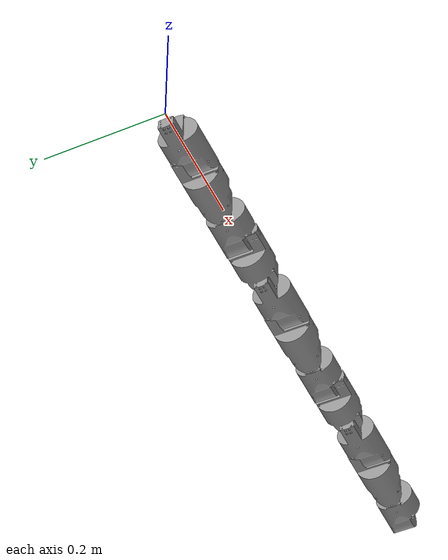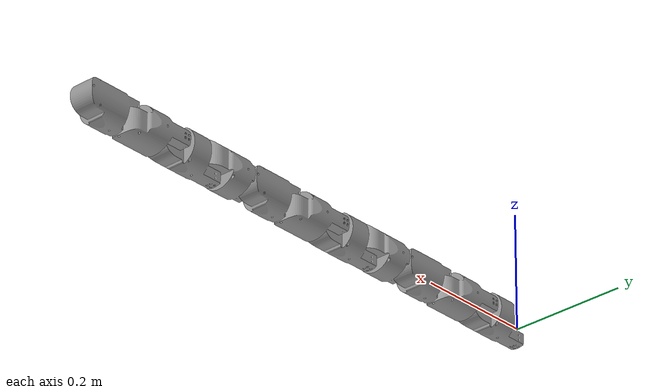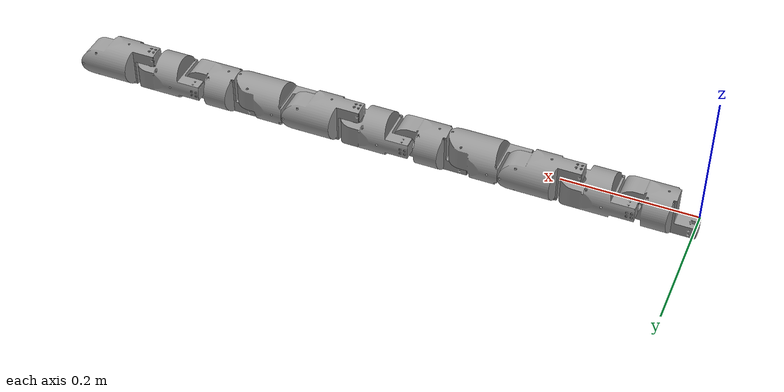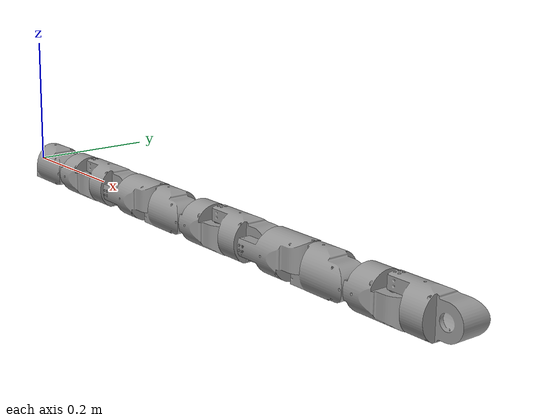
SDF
<?xml version='1.0'?>
<sdf version='1.6'>
  <model name='11segment'>
    <link name='segment_00'>
      <pose frame=''>0 0 0 0 -0 0</pose>
      <inertial>
        <mass>0.4</mass>
        <inertia>
          <ixx>0.00018565</ixx>
          <ixy>0.00003467</ixy>
          <ixz>-0.0002976</ixz>
          <iyy>0.00034114</iyy>
          <iyz>0.00000185</iyz>
          <izz>0.00033012</izz>
        </inertia>
        <pose frame=''>0.063972 -0.002978 -0.001553 0 -0 0</pose>
      </inertial>
      <self_collide>1</self_collide>
      <kinematic>0</kinematic>
      <gravity>1</gravity>
      <visual name='visual'>
        <pose frame=''>0 0 0 0 -0 0</pose>
        <geometry>
          <mesh>
            <uri>model://11segment/meshes/highpoly.stl</uri>
            <scale>1 1 1</scale>
          </mesh>
        </geometry>
        <material>
          <lighting>1</lighting>
          <script>
            <uri>file://media/materials/scripts/gazebo.material</uri>
            <name>Gazebo/Grey</name>
          </script>
          <ambient>0.3 0.3 0.3 1</ambient>
          <diffuse>0.7 0.7 0.7 1</diffuse>
          <specular>0.01 0.01 0.01 1</specular>
          <emissive>0 0 0 1</emissive>
          <shader type='vertex'>
            <normal_map>__default__</normal_map>
          </shader>
        </material>
        <transparency>0</transparency>
        <cast_shadows>1</cast_shadows>
      </visual>
      <collision name='collision'>
        <laser_retro>0</laser_retro>
        <max_contacts>10</max_contacts>
        <pose frame=''>0 0 0 0 -0 0</pose>
        <geometry>
          <mesh>
            <uri>model://11segment/meshes/lowpoly.stl</uri>
            <scale>1 1 1</scale>
          </mesh>
        </geometry>
        <surface>
          <friction>
            <ode>
              <mu>1</mu>
              <mu2>1</mu2>
              <fdir1>0 0 0</fdir1>
              <slip1>0</slip1>
              <slip2>0</slip2>
            </ode>
            <torsional>
              <coefficient>1</coefficient>
              <patch_radius>0</patch_radius>
              <surface_radius>0</surface_radius>
              <use_patch_radius>1</use_patch_radius>
              <ode>
                <slip>0</slip>
              </ode>
            </torsional>
          </friction>
          <bounce>
            <restitution_coefficient>0</restitution_coefficient>
            <threshold>1e+06</threshold>
          </bounce>
          <contact>
            <collide_without_contact>0</collide_without_contact>
            <collide_without_contact_bitmask>1</collide_without_contact_bitmask>
            <collide_bitmask>491521</collide_bitmask>
            <ode>
              <soft_cfm>0</soft_cfm>
              <soft_erp>0.2</soft_erp>
              <kp>1e+13</kp>
              <kd>1</kd>
              <max_vel>0.01</max_vel>
              <min_depth>0</min_depth>
            </ode>
            <bullet>
              <split_impulse>1</split_impulse>
              <split_impulse_penetration_threshold>-0.01</split_impulse_penetration_threshold>
              <soft_cfm>0</soft_cfm>
              <soft_erp>0.2</soft_erp>
              <kp>1e+13</kp>
              <kd>1</kd>
            </bullet>
          </contact>
        </surface>
      </collision>
    </link>
    <link name='segment_01'>
      <pose frame=''>0.084 0 0 1.5708 -0 0</pose>
      <inertial>
        <mass>0.4</mass>
        <inertia>
          <ixx>0.00018565</ixx>
          <ixy>0.00003467</ixy>
          <ixz>-0.0002976</ixz>
          <iyy>0.00034114</iyy>
          <iyz>0.00000185</iyz>
          <izz>0.00033012</izz>
        </inertia>
        <pose frame=''>0.063972 -0.002978 -0.001553 0 -0 0</pose>
      </inertial>
      <self_collide>1</self_collide>
      <kinematic>0</kinematic>
      <gravity>1</gravity>
      <visual name='visual'>
        <pose frame=''>0 0 0 0 -0 0</pose>
        <geometry>
          <mesh>
            <uri>model://11segment/meshes/highpoly.stl</uri>
            <scale>1 1 1</scale>
          </mesh>
        </geometry>
        <material>
          <lighting>1</lighting>
          <script>
            <uri>file://media/materials/scripts/gazebo.material</uri>
            <name>Gazebo/Grey</name>
          </script>
          <ambient>0.3 0.3 0.3 1</ambient>
          <diffuse>0.7 0.7 0.7 1</diffuse>
          <specular>0.01 0.01 0.01 1</specular>
          <emissive>0 0 0 1</emissive>
          <shader type='vertex'>
            <normal_map>__default__</normal_map>
          </shader>
        </material>
        <transparency>0</transparency>
        <cast_shadows>1</cast_shadows>
      </visual>
      <collision name='collision'>
        <laser_retro>0</laser_retro>
        <max_contacts>10</max_contacts>
        <pose frame=''>0 0 0 0 -0 0</pose>
        <geometry>
          <mesh>
            <uri>model://11segment/meshes/lowpoly.stl</uri>
            <scale>1 1 1</scale>
          </mesh>
        </geometry>
        <surface>
          <friction>
            <ode>
              <mu>1</mu>
              <mu2>1</mu2>
              <fdir1>0 0 0</fdir1>
              <slip1>0</slip1>
              <slip2>0</slip2>
            </ode>
            <torsional>
              <coefficient>1</coefficient>
              <patch_radius>0</patch_radius>
              <surface_radius>0</surface_radius>
              <use_patch_radius>1</use_patch_radius>
              <ode>
                <slip>0</slip>
              </ode>
            </torsional>
          </friction>
          <bounce>
            <restitution_coefficient>0</restitution_coefficient>
            <threshold>1e+06</threshold>
          </bounce>
          <contact>
            <collide_without_contact>0</collide_without_contact>
            <collide_without_contact_bitmask>1</collide_without_contact_bitmask>
            <collide_bitmask>31744</collide_bitmask>
            <ode>
              <soft_cfm>0</soft_cfm>
              <soft_erp>0.2</soft_erp>
              <kp>1e+13</kp>
              <kd>1</kd>
              <max_vel>0.01</max_vel>
              <min_depth>0</min_depth>
            </ode>
            <bullet>
              <split_impulse>1</split_impulse>
              <split_impulse_penetration_threshold>-0.01</split_impulse_penetration_threshold>
              <soft_cfm>0</soft_cfm>
              <soft_erp>0.2</soft_erp>
              <kp>1e+13</kp>
              <kd>1</kd>
            </bullet>
          </contact>
        </surface>
      </collision>
    </link>
    <link name='segment_02'>
      <pose frame=''>0.168 0 0 3.14159 -0 0</pose>
      <inertial>
        <mass>0.4</mass>
        <inertia>
          <ixx>0.00018565</ixx>
          <ixy>0.00003467</ixy>
          <ixz>-0.0002976</ixz>
          <iyy>0.00034114</iyy>
          <iyz>0.00000185</iyz>
          <izz>0.00033012</izz>
        </inertia>
        <pose frame=''>0.063972 -0.002978 -0.001553 0 -0 0</pose>
      </inertial>
      <self_collide>1</self_collide>
      <kinematic>0</kinematic>
      <gravity>1</gravity>
      <visual name='visual'>
        <pose frame=''>0 0 0 0 -0 0</pose>
        <geometry>
          <mesh>
            <uri>model://11segment/meshes/highpoly.stl</uri>
            <scale>1 1 1</scale>
          </mesh>
        </geometry>
        <material>
          <lighting>1</lighting>
          <script>
            <uri>file://media/materials/scripts/gazebo.material</uri>
            <name>Gazebo/Grey</name>
          </script>
          <ambient>0.3 0.3 0.3 1</ambient>
          <diffuse>0.7 0.7 0.7 1</diffuse>
          <specular>0.01 0.01 0.01 1</specular>
          <emissive>0 0 0 1</emissive>
          <shader type='vertex'>
            <normal_map>__default__</normal_map>
          </shader>
        </material>
        <transparency>0</transparency>
        <cast_shadows>1</cast_shadows>
      </visual>
      <collision name='collision'>
        <laser_retro>0</laser_retro>
        <max_contacts>10</max_contacts>
        <pose frame=''>0 0 0 0 -0 0</pose>
        <geometry>
          <mesh>
            <uri>model://11segment/meshes/lowpoly.stl</uri>
            <scale>1 1 1</scale>
          </mesh>
        </geometry>
        <surface>
          <friction>
            <ode>
              <mu>1</mu>
              <mu2>1</mu2>
              <fdir1>0 0 0</fdir1>
              <slip1>0</slip1>
              <slip2>0</slip2>
            </ode>
            <torsional>
              <coefficient>1</coefficient>
              <patch_radius>0</patch_radius>
              <surface_radius>0</surface_radius>
              <use_patch_radius>1</use_patch_radius>
              <ode>
                <slip>0</slip>
              </ode>
            </torsional>
          </friction>
          <bounce>
            <restitution_coefficient>0</restitution_coefficient>
            <threshold>1e+06</threshold>
          </bounce>
          <contact>
            <collide_without_contact>0</collide_without_contact>
            <collide_without_contact_bitmask>1</collide_without_contact_bitmask>
            <collide_bitmask>960</collide_bitmask>
            <ode>
              <soft_cfm>0</soft_cfm>
              <soft_erp>0.2</soft_erp>
              <kp>1e+13</kp>
              <kd>1</kd>
              <max_vel>0.01</max_vel>
              <min_depth>0</min_depth>
            </ode>
            <bullet>
              <split_impulse>1</split_impulse>
              <split_impulse_penetration_threshold>-0.01</split_impulse_penetration_threshold>
              <soft_cfm>0</soft_cfm>
              <soft_erp>0.2</soft_erp>
              <kp>1e+13</kp>
              <kd>1</kd>
            </bullet>
          </contact>
        </surface>
      </collision>
    </link>
    <link name='segment_03'>
      <pose frame=''>0.252 0 0 -1.57079 0 0</pose>
      <inertial>
        <mass>0.4</mass>
        <inertia>
          <ixx>0.00018565</ixx>
          <ixy>0.00003467</ixy>
          <ixz>-0.0002976</ixz>
          <iyy>0.00034114</iyy>
          <iyz>0.00000185</iyz>
          <izz>0.00033012</izz>
        </inertia>
        <pose frame=''>0.063972 -0.002978 -0.001553 0 -0 0</pose>
      </inertial>
      <self_collide>1</self_collide>
      <kinematic>0</kinematic>
      <gravity>1</gravity>
      <visual name='visual'>
        <pose frame=''>0 0 0 0 -0 0</pose>
        <geometry>
          <mesh>
            <uri>model://11segment/meshes/highpoly.stl</uri>
            <scale>1 1 1</scale>
          </mesh>
        </geometry>
        <material>
          <lighting>1</lighting>
          <script>
            <uri>file://media/materials/scripts/gazebo.material</uri>
            <name>Gazebo/Grey</name>
          </script>
          <ambient>0.3 0.3 0.3 1</ambient>
          <diffuse>0.7 0.7 0.7 1</diffuse>
          <specular>0.01 0.01 0.01 1</specular>
          <emissive>0 0 0 1</emissive>
          <shader type='vertex'>
            <normal_map>__default__</normal_map>
          </shader>
        </material>
        <transparency>0</transparency>
        <cast_shadows>1</cast_shadows>
      </visual>
      <collision name='collision'>
        <laser_retro>0</laser_retro>
        <max_contacts>10</max_contacts>
        <pose frame=''>0 0 0 0 -0 0</pose>
        <geometry>
          <mesh>
            <uri>model://11segment/meshes/lowpoly.stl</uri>
            <scale>1 1 1</scale>
          </mesh>
        </geometry>
        <surface>
          <friction>
            <ode>
              <mu>1</mu>
              <mu2>1</mu2>
              <fdir1>0 0 0</fdir1>
              <slip1>0</slip1>
              <slip2>0</slip2>
            </ode>
            <torsional>
              <coefficient>1</coefficient>
              <patch_radius>0</patch_radius>
              <surface_radius>0</surface_radius>
              <use_patch_radius>1</use_patch_radius>
              <ode>
                <slip>0</slip>
              </ode>
            </torsional>
          </friction>
          <bounce>
            <restitution_coefficient>0</restitution_coefficient>
            <threshold>1e+06</threshold>
          </bounce>
          <contact>
            <collide_without_contact>0</collide_without_contact>
            <collide_without_contact_bitmask>1</collide_without_contact_bitmask>
            <collide_bitmask>56</collide_bitmask>
            <ode>
              <soft_cfm>0</soft_cfm>
              <soft_erp>0.2</soft_erp>
              <kp>1e+13</kp>
              <kd>1</kd>
              <max_vel>0.01</max_vel>
              <min_depth>0</min_depth>
            </ode>
            <bullet>
              <split_impulse>1</split_impulse>
              <split_impulse_penetration_threshold>-0.01</split_impulse_penetration_threshold>
              <soft_cfm>0</soft_cfm>
              <soft_erp>0.2</soft_erp>
              <kp>1e+13</kp>
              <kd>1</kd>
            </bullet>
          </contact>
        </surface>
      </collision>
    </link>
    <link name='segment_04'>
      <pose frame=''>0.336 0 0 0 -0 0</pose>
      <inertial>
        <mass>0.4</mass>
        <inertia>
          <ixx>0.00018565</ixx>
          <ixy>0.00003467</ixy>
          <ixz>-0.0002976</ixz>
          <iyy>0.00034114</iyy>
          <iyz>0.00000185</iyz>
          <izz>0.00033012</izz>
        </inertia>
        <pose frame=''>0.063972 -0.002978 -0.001553 0 -0 0</pose>
      </inertial>
      <self_collide>1</self_collide>
      <kinematic>0</kinematic>
      <gravity>1</gravity>
      <visual name='visual'>
        <pose frame=''>0 0 0 0 -0 0</pose>
        <geometry>
          <mesh>
            <uri>model://11segment/meshes/highpoly.stl</uri>
            <scale>1 1 1</scale>
          </mesh>
        </geometry>
        <material>
          <lighting>1</lighting>
          <script>
            <uri>file://media/materials/scripts/gazebo.material</uri>
            <name>Gazebo/Grey</name>
          </script>
          <ambient>0.3 0.3 0.3 1</ambient>
          <diffuse>0.7 0.7 0.7 1</diffuse>
          <specular>0.01 0.01 0.01 1</specular>
          <emissive>0 0 0 1</emissive>
          <shader type='vertex'>
            <normal_map>__default__</normal_map>
          </shader>
        </material>
        <transparency>0</transparency>
        <cast_shadows>1</cast_shadows>
      </visual>
      <collision name='collision'>
        <laser_retro>0</laser_retro>
        <max_contacts>10</max_contacts>
        <pose frame=''>0 0 0 0 -0 0</pose>
        <geometry>
          <mesh>
            <uri>model://11segment/meshes/lowpoly.stl</uri>
            <scale>1 1 1</scale>
          </mesh>
        </geometry>
        <surface>
          <friction>
            <ode>
              <mu>1</mu>
              <mu2>1</mu2>
              <fdir1>0 0 0</fdir1>
              <slip1>0</slip1>
              <slip2>0</slip2>
            </ode>
            <torsional>
              <coefficient>1</coefficient>
              <patch_radius>0</patch_radius>
              <surface_radius>0</surface_radius>
              <use_patch_radius>1</use_patch_radius>
              <ode>
                <slip>0</slip>
              </ode>
            </torsional>
          </friction>
          <bounce>
            <restitution_coefficient>0</restitution_coefficient>
            <threshold>1e+06</threshold>
          </bounce>
          <contact>
            <collide_without_contact>0</collide_without_contact>
            <collide_without_contact_bitmask>1</collide_without_contact_bitmask>
            <collide_bitmask>6</collide_bitmask>
            <ode>
              <soft_cfm>0</soft_cfm>
              <soft_erp>0.2</soft_erp>
              <kp>1e+13</kp>
              <kd>1</kd>
              <max_vel>0.01</max_vel>
              <min_depth>0</min_depth>
            </ode>
            <bullet>
              <split_impulse>1</split_impulse>
              <split_impulse_penetration_threshold>-0.01</split_impulse_penetration_threshold>
              <soft_cfm>0</soft_cfm>
              <soft_erp>0.2</soft_erp>
              <kp>1e+13</kp>
              <kd>1</kd>
            </bullet>
          </contact>
        </surface>
      </collision>
    </link>
    <link name='segment_05'>
      <pose frame=''>0.42 0 0 1.5708 -0 0</pose>
      <inertial>
        <mass>0.4</mass>
        <inertia>
          <ixx>0.00018565</ixx>
          <ixy>0.00003467</ixy>
          <ixz>-0.0002976</ixz>
          <iyy>0.00034114</iyy>
          <iyz>0.00000185</iyz>
          <izz>0.00033012</izz>
        </inertia>
        <pose frame=''>0.063972 -0.002978 -0.001553 0 -0 0</pose>
      </inertial>
      <self_collide>1</self_collide>
      <kinematic>0</kinematic>
      <gravity>1</gravity>
      <visual name='visual'>
        <pose frame=''>0 0 0 0 -0 0</pose>
        <geometry>
          <mesh>
            <uri>model://11segment/meshes/highpoly.stl</uri>
            <scale>1 1 1</scale>
          </mesh>
        </geometry>
        <material>
          <lighting>1</lighting>
          <script>
            <uri>file://media/materials/scripts/gazebo.material</uri>
            <name>Gazebo/Grey</name>
          </script>
          <ambient>0.3 0.3 0.3 1</ambient>
          <diffuse>0.7 0.7 0.7 1</diffuse>
          <specular>0.01 0.01 0.01 1</specular>
          <emissive>0 0 0 1</emissive>
          <shader type='vertex'>
            <normal_map>__default__</normal_map>
          </shader>
        </material>
        <transparency>0</transparency>
        <cast_shadows>1</cast_shadows>
      </visual>
      <collision name='collision'>
        <laser_retro>0</laser_retro>
        <max_contacts>10</max_contacts>
        <pose frame=''>0 0 0 0 -0 0</pose>
        <geometry>
          <mesh>
            <uri>model://11segment/meshes/lowpoly.stl</uri>
            <scale>1 1 1</scale>
          </mesh>
        </geometry>
        <surface>
          <friction>
            <ode>
              <mu>1</mu>
              <mu2>1</mu2>
              <fdir1>0 0 0</fdir1>
              <slip1>0</slip1>
              <slip2>0</slip2>
            </ode>
            <torsional>
              <coefficient>1</coefficient>
              <patch_radius>0</patch_radius>
              <surface_radius>0</surface_radius>
              <use_patch_radius>1</use_patch_radius>
              <ode>
                <slip>0</slip>
              </ode>
            </torsional>
          </friction>
          <bounce>
            <restitution_coefficient>0</restitution_coefficient>
            <threshold>1e+06</threshold>
          </bounce>
          <contact>
            <collide_without_contact>0</collide_without_contact>
            <collide_without_contact_bitmask>1</collide_without_contact_bitmask>
            <collide_bitmask>1</collide_bitmask>
            <ode>
              <soft_cfm>0</soft_cfm>
              <soft_erp>0.2</soft_erp>
              <kp>1e+13</kp>
              <kd>1</kd>
              <max_vel>0.01</max_vel>
              <min_depth>0</min_depth>
            </ode>
            <bullet>
              <split_impulse>1</split_impulse>
              <split_impulse_penetration_threshold>-0.01</split_impulse_penetration_threshold>
              <soft_cfm>0</soft_cfm>
              <soft_erp>0.2</soft_erp>
              <kp>1e+13</kp>
              <kd>1</kd>
            </bullet>
          </contact>
        </surface>
      </collision>
    </link>
    <link name='segment_06'>
      <pose frame=''>0.504 0 0 3.14159 -0 0</pose>
      <inertial>
        <mass>0.4</mass>
        <inertia>
          <ixx>0.00018565</ixx>
          <ixy>0.00003467</ixy>
          <ixz>-0.0002976</ixz>
          <iyy>0.00034114</iyy>
          <iyz>0.00000185</iyz>
          <izz>0.00033012</izz>
        </inertia>
        <pose frame=''>0.063972 -0.002978 -0.001553 0 -0 0</pose>
      </inertial>
      <self_collide>1</self_collide>
      <kinematic>0</kinematic>
      <gravity>1</gravity>
      <visual name='visual'>
        <pose frame=''>0 0 0 0 -0 0</pose>
        <geometry>
          <mesh>
            <uri>model://11segment/meshes/highpoly.stl</uri>
            <scale>1 1 1</scale>
          </mesh>
        </geometry>
        <material>
          <lighting>1</lighting>
          <script>
            <uri>file://media/materials/scripts/gazebo.material</uri>
            <name>Gazebo/Grey</name>
          </script>
          <ambient>0.3 0.3 0.3 1</ambient>
          <diffuse>0.7 0.7 0.7 1</diffuse>
          <specular>0.01 0.01 0.01 1</specular>
          <emissive>0 0 0 1</emissive>
          <shader type='vertex'>
            <normal_map>__default__</normal_map>
          </shader>
        </material>
        <transparency>0</transparency>
        <cast_shadows>1</cast_shadows>
      </visual>
      <collision name='collision'>
        <laser_retro>0</laser_retro>
        <max_contacts>10</max_contacts>
        <pose frame=''>0 0 0 0 -0 0</pose>
        <geometry>
          <mesh>
            <uri>model://11segment/meshes/lowpoly.stl</uri>
            <scale>1 1 1</scale>
          </mesh>
        </geometry>
        <surface>
          <friction>
            <ode>
              <mu>1</mu>
              <mu2>1</mu2>
              <fdir1>0 0 0</fdir1>
              <slip1>0</slip1>
              <slip2>0</slip2>
            </ode>
            <torsional>
              <coefficient>1</coefficient>
              <patch_radius>0</patch_radius>
              <surface_radius>0</surface_radius>
              <use_patch_radius>1</use_patch_radius>
              <ode>
                <slip>0</slip>
              </ode>
            </torsional>
          </friction>
          <bounce>
            <restitution_coefficient>0</restitution_coefficient>
            <threshold>1e+06</threshold>
          </bounce>
          <contact>
            <collide_without_contact>0</collide_without_contact>
            <collide_without_contact_bitmask>1</collide_without_contact_bitmask>
            <collide_bitmask>278528</collide_bitmask>
            <ode>
              <soft_cfm>0</soft_cfm>
              <soft_erp>0.2</soft_erp>
              <kp>1e+13</kp>
              <kd>1</kd>
              <max_vel>0.01</max_vel>
              <min_depth>0</min_depth>
            </ode>
            <bullet>
              <split_impulse>1</split_impulse>
              <split_impulse_penetration_threshold>-0.01</split_impulse_penetration_threshold>
              <soft_cfm>0</soft_cfm>
              <soft_erp>0.2</soft_erp>
              <kp>1e+13</kp>
              <kd>1</kd>
            </bullet>
          </contact>
        </surface>
      </collision>
    </link>
    <link name='segment_07'>
      <pose frame=''>0.588 0 0 -1.57079 0 0</pose>
      <inertial>
        <mass>0.4</mass>
        <inertia>
          <ixx>0.00018565</ixx>
          <ixy>0.00003467</ixy>
          <ixz>-0.0002976</ixz>
          <iyy>0.00034114</iyy>
          <iyz>0.00000185</iyz>
          <izz>0.00033012</izz>
        </inertia>
        <pose frame=''>0.063972 -0.002978 -0.001553 0 -0 0</pose>
      </inertial>
      <self_collide>1</self_collide>
      <kinematic>0</kinematic>
      <gravity>1</gravity>
      <visual name='visual'>
        <pose frame=''>0 0 0 0 -0 0</pose>
        <geometry>
          <mesh>
            <uri>model://11segment/meshes/highpoly.stl</uri>
            <scale>1 1 1</scale>
          </mesh>
        </geometry>
        <material>
          <lighting>1</lighting>
          <script>
            <uri>file://media/materials/scripts/gazebo.material</uri>
            <name>Gazebo/Grey</name>
          </script>
          <ambient>0.3 0.3 0.3 1</ambient>
          <diffuse>0.7 0.7 0.7 1</diffuse>
          <specular>0.01 0.01 0.01 1</specular>
          <emissive>0 0 0 1</emissive>
          <shader type='vertex'>
            <normal_map>__default__</normal_map>
          </shader>
        </material>
        <transparency>0</transparency>
        <cast_shadows>1</cast_shadows>
      </visual>
      <collision name='collision'>
        <laser_retro>0</laser_retro>
        <max_contacts>10</max_contacts>
        <pose frame=''>0 0 0 0 -0 0</pose>
        <geometry>
          <mesh>
            <uri>model://11segment/meshes/lowpoly.stl</uri>
            <scale>1 1 1</scale>
          </mesh>
        </geometry>
        <surface>
          <friction>
            <ode>
              <mu>1</mu>
              <mu2>1</mu2>
              <fdir1>0 0 0</fdir1>
              <slip1>0</slip1>
              <slip2>0</slip2>
            </ode>
            <torsional>
              <coefficient>1</coefficient>
              <patch_radius>0</patch_radius>
              <surface_radius>0</surface_radius>
              <use_patch_radius>1</use_patch_radius>
              <ode>
                <slip>0</slip>
              </ode>
            </torsional>
          </friction>
          <bounce>
            <restitution_coefficient>0</restitution_coefficient>
            <threshold>1e+06</threshold>
          </bounce>
          <contact>
            <collide_without_contact>0</collide_without_contact>
            <collide_without_contact_bitmask>1</collide_without_contact_bitmask>
            <collide_bitmask>139776</collide_bitmask>
            <ode>
              <soft_cfm>0</soft_cfm>
              <soft_erp>0.2</soft_erp>
              <kp>1e+13</kp>
              <kd>1</kd>
              <max_vel>0.01</max_vel>
              <min_depth>0</min_depth>
            </ode>
            <bullet>
              <split_impulse>1</split_impulse>
              <split_impulse_penetration_threshold>-0.01</split_impulse_penetration_threshold>
              <soft_cfm>0</soft_cfm>
              <soft_erp>0.2</soft_erp>
              <kp>1e+13</kp>
              <kd>1</kd>
            </bullet>
          </contact>
        </surface>
      </collision>
    </link>
    <link name='segment_08'>
      <pose frame=''>0.672 0 0 0 -0 0</pose>
      <inertial>
        <mass>0.4</mass>
        <inertia>
          <ixx>0.00018565</ixx>
          <ixy>0.00003467</ixy>
          <ixz>-0.0002976</ixz>
          <iyy>0.00034114</iyy>
          <iyz>0.00000185</iyz>
          <izz>0.00033012</izz>
        </inertia>
        <pose frame=''>0.063972 -0.002978 -0.001553 0 -0 0</pose>
      </inertial>
      <self_collide>1</self_collide>
      <kinematic>0</kinematic>
      <gravity>1</gravity>
      <visual name='visual'>
        <pose frame=''>0 0 0 0 -0 0</pose>
        <geometry>
          <mesh>
            <uri>model://11segment/meshes/highpoly.stl</uri>
            <scale>1 1 1</scale>
          </mesh>
        </geometry>
        <material>
          <lighting>1</lighting>
          <script>
            <uri>file://media/materials/scripts/gazebo.material</uri>
            <name>Gazebo/Grey</name>
          </script>
          <ambient>0.3 0.3 0.3 1</ambient>
          <diffuse>0.7 0.7 0.7 1</diffuse>
          <specular>0.01 0.01 0.01 1</specular>
          <emissive>0 0 0 1</emissive>
          <shader type='vertex'>
            <normal_map>__default__</normal_map>
          </shader>
        </material>
        <transparency>0</transparency>
        <cast_shadows>1</cast_shadows>
      </visual>
      <collision name='collision'>
        <laser_retro>0</laser_retro>
        <max_contacts>10</max_contacts>
        <pose frame=''>0 0 0 0 -0 0</pose>
        <geometry>
          <mesh>
            <uri>model://11segment/meshes/lowpoly.stl</uri>
            <scale>1 1 1</scale>
          </mesh>
        </geometry>
        <surface>
          <friction>
            <ode>
              <mu>1</mu>
              <mu2>1</mu2>
              <fdir1>0 0 0</fdir1>
              <slip1>0</slip1>
              <slip2>0</slip2>
            </ode>
            <torsional>
              <coefficient>1</coefficient>
              <patch_radius>0</patch_radius>
              <surface_radius>0</surface_radius>
              <use_patch_radius>1</use_patch_radius>
              <ode>
                <slip>0</slip>
              </ode>
            </torsional>
          </friction>
          <bounce>
            <restitution_coefficient>0</restitution_coefficient>
            <threshold>1e+06</threshold>
          </bounce>
          <contact>
            <collide_without_contact>0</collide_without_contact>
            <collide_without_contact_bitmask>1</collide_without_contact_bitmask>
            <collide_bitmask>69920</collide_bitmask>
            <ode>
              <soft_cfm>0</soft_cfm>
              <soft_erp>0.2</soft_erp>
              <kp>1e+13</kp>
              <kd>1</kd>
              <max_vel>0.01</max_vel>
              <min_depth>0</min_depth>
            </ode>
            <bullet>
              <split_impulse>1</split_impulse>
              <split_impulse_penetration_threshold>-0.01</split_impulse_penetration_threshold>
              <soft_cfm>0</soft_cfm>
              <soft_erp>0.2</soft_erp>
              <kp>1e+13</kp>
              <kd>1</kd>
            </bullet>
          </contact>
        </surface>
      </collision>
    </link>
    <link name='segment_09'>
      <pose frame=''>0.756 0 0 1.5708 -0 0</pose>
      <inertial>
        <mass>0.4</mass>
        <inertia>
          <ixx>0.00018565</ixx>
          <ixy>0.00003467</ixy>
          <ixz>-0.0002976</ixz>
          <iyy>0.00034114</iyy>
          <iyz>0.00000185</iyz>
          <izz>0.00033012</izz>
        </inertia>
        <pose frame=''>0.063972 -0.002978 -0.001553 0 -0 0</pose>
      </inertial>
      <self_collide>1</self_collide>
      <kinematic>0</kinematic>
      <gravity>1</gravity>
      <visual name='visual'>
        <pose frame=''>0 0 0 0 -0 0</pose>
        <geometry>
          <mesh>
            <uri>model://11segment/meshes/highpoly.stl</uri>
            <scale>1 1 1</scale>
          </mesh>
        </geometry>
        <material>
          <lighting>1</lighting>
          <script>
            <uri>file://media/materials/scripts/gazebo.material</uri>
            <name>Gazebo/Grey</name>
          </script>
          <ambient>0.3 0.3 0.3 1</ambient>
          <diffuse>0.7 0.7 0.7 1</diffuse>
          <specular>0.01 0.01 0.01 1</specular>
          <emissive>0 0 0 1</emissive>
          <shader type='vertex'>
            <normal_map>__default__</normal_map>
          </shader>
        </material>
        <transparency>0</transparency>
        <cast_shadows>1</cast_shadows>
      </visual>
      <collision name='collision'>
        <laser_retro>0</laser_retro>
        <max_contacts>10</max_contacts>
        <pose frame=''>0 0 0 0 -0 0</pose>
        <geometry>
          <mesh>
            <uri>model://11segment/meshes/lowpoly.stl</uri>
            <scale>1 1 1</scale>
          </mesh>
        </geometry>
        <surface>
          <friction>
            <ode>
              <mu>1</mu>
              <mu2>1</mu2>
              <fdir1>0 0 0</fdir1>
              <slip1>0</slip1>
              <slip2>0</slip2>
            </ode>
            <torsional>
              <coefficient>1</coefficient>
              <patch_radius>0</patch_radius>
              <surface_radius>0</surface_radius>
              <use_patch_radius>1</use_patch_radius>
              <ode>
                <slip>0</slip>
              </ode>
            </torsional>
          </friction>
          <bounce>
            <restitution_coefficient>0</restitution_coefficient>
            <threshold>1e+06</threshold>
          </bounce>
          <contact>
            <collide_without_contact>0</collide_without_contact>
            <collide_without_contact_bitmask>1</collide_without_contact_bitmask>
            <collide_bitmask>34964</collide_bitmask>
            <ode>
              <soft_cfm>0</soft_cfm>
              <soft_erp>0.2</soft_erp>
              <kp>1e+13</kp>
              <kd>1</kd>
              <max_vel>0.01</max_vel>
              <min_depth>0</min_depth>
            </ode>
            <bullet>
              <split_impulse>1</split_impulse>
              <split_impulse_penetration_threshold>-0.01</split_impulse_penetration_threshold>
              <soft_cfm>0</soft_cfm>
              <soft_erp>0.2</soft_erp>
              <kp>1e+13</kp>
              <kd>1</kd>
            </bullet>
          </contact>
        </surface>
      </collision>
    </link>
    <link name='segment_10'>
      <pose frame=''>0.84 0 0 3.14159 -0 0</pose>
      <inertial>
        <mass>0.4</mass>
        <inertia>
          <ixx>0.00018565</ixx>
          <ixy>0.00003467</ixy>
          <ixz>-0.0002976</ixz>
          <iyy>0.00034114</iyy>
          <iyz>0.00000185</iyz>
          <izz>0.00033012</izz>
        </inertia>
        <pose frame=''>0.063972 -0.002978 -0.001553 0 -0 0</pose>
      </inertial>
      <self_collide>1</self_collide>
      <kinematic>0</kinematic>
      <gravity>1</gravity>
      <visual name='visual'>
        <pose frame=''>0 0 0 0 -0 0</pose>
        <geometry>
          <mesh>
            <uri>model://11segment/meshes/highpoly.stl</uri>
            <scale>1 1 1</scale>
          </mesh>
        </geometry>
        <material>
          <lighting>1</lighting>
          <script>
            <uri>file://media/materials/scripts/gazebo.material</uri>
            <name>Gazebo/Grey</name>
          </script>
          <ambient>0.3 0.3 0.3 1</ambient>
          <diffuse>0.7 0.7 0.7 1</diffuse>
          <specular>0.01 0.01 0.01 1</specular>
          <emissive>0 0 0 1</emissive>
          <shader type='vertex'>
            <normal_map>__default__</normal_map>
          </shader>
        </material>
        <transparency>0</transparency>
        <cast_shadows>1</cast_shadows>
      </visual>
      <collision name='collision'>
        <laser_retro>0</laser_retro>
        <max_contacts>10</max_contacts>
        <pose frame=''>0 0 0 0 -0 0</pose>
        <geometry>
          <mesh>
            <uri>model://11segment/meshes/lowpoly.stl</uri>
            <scale>1 1 1</scale>
          </mesh>
        </geometry>
        <surface>
          <friction>
            <ode>
              <mu>1</mu>
              <mu2>1</mu2>
              <fdir1>0 0 0</fdir1>
              <slip1>0</slip1>
              <slip2>0</slip2>
            </ode>
            <torsional>
              <coefficient>1</coefficient>
              <patch_radius>0</patch_radius>
              <surface_radius>0</surface_radius>
              <use_patch_radius>1</use_patch_radius>
              <ode>
                <slip>0</slip>
              </ode>
            </torsional>
          </friction>
          <bounce>
            <restitution_coefficient>0</restitution_coefficient>
            <threshold>1e+06</threshold>
          </bounce>
          <contact>
            <collide_without_contact>0</collide_without_contact>
            <collide_without_contact_bitmask>1</collide_without_contact_bitmask>
            <collide_bitmask>1099</collide_bitmask>
            <ode>
              <soft_cfm>0</soft_cfm>
              <soft_erp>0.2</soft_erp>
              <kp>1e+13</kp>
              <kd>1</kd>
              <max_vel>0.01</max_vel>
              <min_depth>0</min_depth>
            </ode>
            <bullet>
              <split_impulse>1</split_impulse>
              <split_impulse_penetration_threshold>-0.01</split_impulse_penetration_threshold>
              <soft_cfm>0</soft_cfm>
              <soft_erp>0.2</soft_erp>
              <kp>1e+13</kp>
              <kd>1</kd>
            </bullet>
          </contact>
        </surface>
      </collision>
    </link>
    <joint name='joint_0' type='revolute'>
      <parent>segment_00</parent>
      <child>segment_01</child>
      <pose frame=''>0.007 0 0 0 -0 0</pose>
      <axis>
        <xyz>0 0 -1</xyz>
        <use_parent_model_frame>0</use_parent_model_frame>
        <limit>
          <lower>-1.5708</lower>
          <upper>1.5708</upper>
          <effort>-1</effort>
          <velocity>-1</velocity>
        </limit>
        <dynamics>
          <spring_reference>0</spring_reference>
          <spring_stiffness>0</spring_stiffness>
          <damping>0</damping>
          <friction>0</friction>
        </dynamics>
      </axis>
      <physics>
        <ode>
          <limit>
            <cfm>0</cfm>
            <erp>0.2</erp>
          </limit>
          <suspension>
            <cfm>0</cfm>
            <erp>0.2</erp>
          </suspension>
        </ode>
      </physics>
    </joint>
    <joint name='joint_1' type='revolute'>
      <parent>segment_01</parent>
      <child>segment_02</child>
      <pose frame=''>0.007 0 0 0 -0 0</pose>
      <axis>
        <xyz>0 0 -1</xyz>
        <use_parent_model_frame>0</use_parent_model_frame>
        <limit>
          <lower>-1.5708</lower>
          <upper>1.5708</upper>
          <effort>-1</effort>
          <velocity>-1</velocity>
        </limit>
        <dynamics>
          <spring_reference>0</spring_reference>
          <spring_stiffness>0</spring_stiffness>
          <damping>0</damping>
          <friction>0</friction>
        </dynamics>
      </axis>
      <physics>
        <ode>
          <limit>
            <cfm>0</cfm>
            <erp>0.2</erp>
          </limit>
          <suspension>
            <cfm>0</cfm>
            <erp>0.2</erp>
          </suspension>
        </ode>
      </physics>
    </joint>
    <joint name='joint_2' type='revolute'>
      <parent>segment_02</parent>
      <child>segment_03</child>
      <pose frame=''>0.007 0 0 0 -0 0</pose>
      <axis>
        <xyz>0 0 -1</xyz>
        <use_parent_model_frame>0</use_parent_model_frame>
        <limit>
          <lower>-1.5708</lower>
          <upper>1.5708</upper>
          <effort>-1</effort>
          <velocity>-1</velocity>
        </limit>
        <dynamics>
          <spring_reference>0</spring_reference>
          <spring_stiffness>0</spring_stiffness>
          <damping>0</damping>
          <friction>0</friction>
        </dynamics>
      </axis>
      <physics>
        <ode>
          <limit>
            <cfm>0</cfm>
            <erp>0.2</erp>
          </limit>
          <suspension>
            <cfm>0</cfm>
            <erp>0.2</erp>
          </suspension>
        </ode>
      </physics>
    </joint>
    <joint name='joint_3' type='revolute'>
      <parent>segment_03</parent>
      <child>segment_04</child>
      <pose frame=''>0.007 0 0 0 -0 0</pose>
      <axis>
        <xyz>0 0 -1</xyz>
        <use_parent_model_frame>0</use_parent_model_frame>
        <limit>
          <lower>-1.5708</lower>
          <upper>1.5708</upper>
          <effort>-1</effort>
          <velocity>-1</velocity>
        </limit>
        <dynamics>
          <spring_reference>0</spring_reference>
          <spring_stiffness>0</spring_stiffness>
          <damping>0</damping>
          <friction>0</friction>
        </dynamics>
      </axis>
      <physics>
        <ode>
          <limit>
            <cfm>0</cfm>
            <erp>0.2</erp>
          </limit>
          <suspension>
            <cfm>0</cfm>
            <erp>0.2</erp>
          </suspension>
        </ode>
      </physics>
    </joint>
    <joint name='joint_4' type='revolute'>
      <parent>segment_04</parent>
      <child>segment_05</child>
      <pose frame=''>0.007 0 0 0 -0 0</pose>
      <axis>
        <xyz>0 0 -1</xyz>
        <use_parent_model_frame>0</use_parent_model_frame>
        <limit>
          <lower>-1.5708</lower>
          <upper>1.5708</upper>
          <effort>-1</effort>
          <velocity>-1</velocity>
        </limit>
        <dynamics>
          <spring_reference>0</spring_reference>
          <spring_stiffness>0</spring_stiffness>
          <damping>0</damping>
          <friction>0</friction>
        </dynamics>
      </axis>
      <physics>
        <ode>
          <limit>
            <cfm>0</cfm>
            <erp>0.2</erp>
          </limit>
          <suspension>
            <cfm>0</cfm>
            <erp>0.2</erp>
          </suspension>
        </ode>
      </physics>
    </joint>
    <joint name='joint_5' type='revolute'>
      <parent>segment_05</parent>
      <child>segment_06</child>
      <pose frame=''>0.007 0 0 0 -0 0</pose>
      <axis>
        <xyz>0 0 -1</xyz>
        <use_parent_model_frame>0</use_parent_model_frame>
        <limit>
          <lower>-1.5708</lower>
          <upper>1.5708</upper>
          <effort>-1</effort>
          <velocity>-1</velocity>
        </limit>
        <dynamics>
          <spring_reference>0</spring_reference>
          <spring_stiffness>0</spring_stiffness>
          <damping>0</damping>
          <friction>0</friction>
        </dynamics>
      </axis>
      <physics>
        <ode>
          <limit>
            <cfm>0</cfm>
            <erp>0.2</erp>
          </limit>
          <suspension>
            <cfm>0</cfm>
            <erp>0.2</erp>
          </suspension>
        </ode>
      </physics>
    </joint>
    <joint name='joint_6' type='revolute'>
      <parent>segment_06</parent>
      <child>segment_07</child>
      <pose frame=''>0.007 0 0 0 -0 0</pose>
      <axis>
        <xyz>0 0 -1</xyz>
        <use_parent_model_frame>0</use_parent_model_frame>
        <limit>
          <lower>-1.5708</lower>
          <upper>1.5708</upper>
          <effort>-1</effort>
          <velocity>-1</velocity>
        </limit>
        <dynamics>
          <spring_reference>0</spring_reference>
          <spring_stiffness>0</spring_stiffness>
          <damping>0</damping>
          <friction>0</friction>
        </dynamics>
      </axis>
      <physics>
        <ode>
          <limit>
            <cfm>0</cfm>
            <erp>0.2</erp>
          </limit>
          <suspension>
            <cfm>0</cfm>
            <erp>0.2</erp>
          </suspension>
        </ode>
      </physics>
    </joint>
    <joint name='joint_7' type='revolute'>
      <parent>segment_07</parent>
      <child>segment_08</child>
      <pose frame=''>0.007 0 0 0 -0 0</pose>
      <axis>
        <xyz>0 0 -1</xyz>
        <use_parent_model_frame>0</use_parent_model_frame>
        <limit>
          <lower>-1.5708</lower>
          <upper>1.5708</upper>
          <effort>-1</effort>
          <velocity>-1</velocity>
        </limit>
        <dynamics>
          <spring_reference>0</spring_reference>
          <spring_stiffness>0</spring_stiffness>
          <damping>0</damping>
          <friction>0</friction>
        </dynamics>
      </axis>
      <physics>
        <ode>
          <limit>
            <cfm>0</cfm>
            <erp>0.2</erp>
          </limit>
          <suspension>
            <cfm>0</cfm>
            <erp>0.2</erp>
          </suspension>
        </ode>
      </physics>
    </joint>
    <joint name='joint_8' type='revolute'>
      <parent>segment_08</parent>
      <child>segment_09</child>
      <pose frame=''>0.007 0 0 0 -0 0</pose>
      <axis>
        <xyz>0 0 -1</xyz>
        <use_parent_model_frame>0</use_parent_model_frame>
        <limit>
          <lower>-1.5708</lower>
          <upper>1.5708</upper>
          <effort>-1</effort>
          <velocity>-1</velocity>
        </limit>
        <dynamics>
          <spring_reference>0</spring_reference>
          <spring_stiffness>0</spring_stiffness>
          <damping>0</damping>
          <friction>0</friction>
        </dynamics>
      </axis>
      <physics>
        <ode>
          <limit>
            <cfm>0</cfm>
            <erp>0.2</erp>
          </limit>
          <suspension>
            <cfm>0</cfm>
            <erp>0.2</erp>
          </suspension>
        </ode>
      </physics>
    </joint>
    <joint name='joint_9' type='revolute'>
      <parent>segment_09</parent>
      <child>segment_10</child>
      <pose frame=''>0.007 0 0 0 -0 0</pose>
      <axis>
        <xyz>0 0 -1</xyz>
        <use_parent_model_frame>0</use_parent_model_frame>
        <limit>
          <lower>-1.5708</lower>
          <upper>1.5708</upper>
          <effort>-1</effort>
          <velocity>-1</velocity>
        </limit>
        <dynamics>
          <spring_reference>0</spring_reference>
          <spring_stiffness>0</spring_stiffness>
          <damping>0</damping>
          <friction>0</friction>
        </dynamics>
      </axis>
      <physics>
        <ode>
          <limit>
            <cfm>0</cfm>
            <erp>0.2</erp>
          </limit>
          <suspension>
            <cfm>0</cfm>
            <erp>0.2</erp>
          </suspension>
        </ode>
      </physics>
    </joint>
    <static>0</static>
    <allow_auto_disable>1</allow_auto_disable>
    <plugin name="gazebo_ros_control" filename="libgazebo_ros_control.so">
        <robotNamespace>/11segment</robotNamespace>
    </plugin>
  </model>
</sdf>
